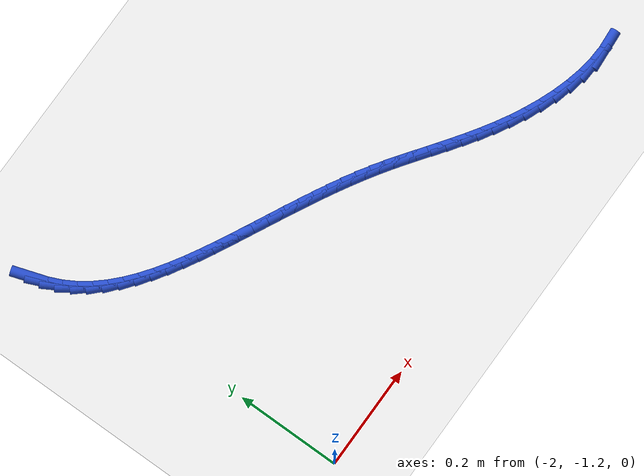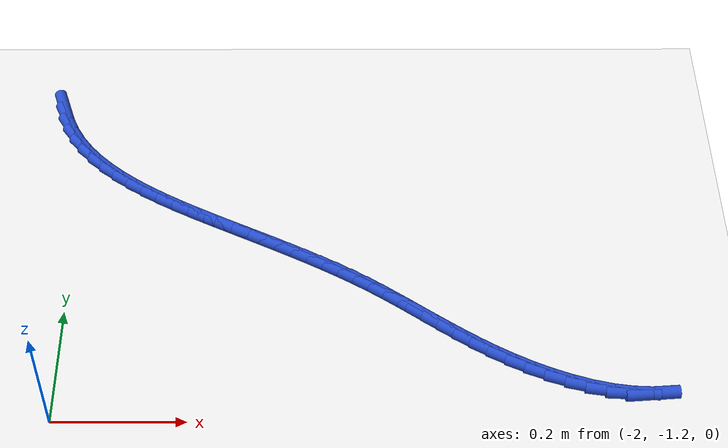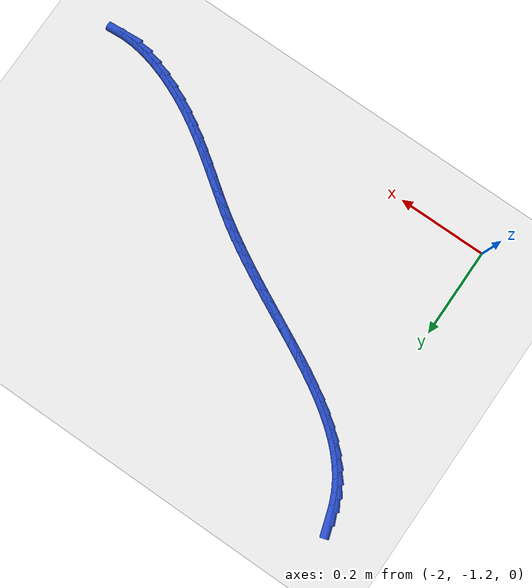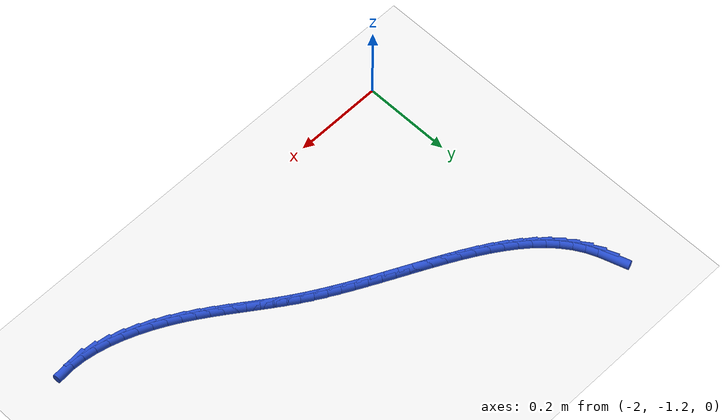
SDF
<sdf version="1.6">
 <world name="default">
  <model name="ground_plane">
   <static>1</static>
   <link name="link">
    <collision name="collision">
     <geometry><plane><normal>0 0 1</normal><size>100 100</size></plane></geometry>
     <surface><friction><ode><mu>100</mu><mu2>50</mu2></ode></friction></surface>
    </collision>
    <visual name="visual">
     <cast_shadows>0</cast_shadows>
     <geometry><plane><normal>0 0 1</normal><size>100 100</size></plane></geometry>
     <material>
      <script><uri>file://media/materials/scripts/gazebo.material</uri><name>Gazebo/WhiteGlow</name></script>
     </material>
    </visual>
   </link>
  </model>
  <model name="line">
   <link name="link_138">
    <pose>-2.0438503392382104 -0.577200579845681 0.01 0 1.57 -1.2551531570376777</pose>
    <collision name="collision">
     <geometry><cylinder><radius>0.01</radius><length>0.08</length></cylinder></geometry>
    </collision>
    <visual name="visual">
     <material>
      <script><name>Gazebo/Blue</name><uri>file://media/materials/scripts/gazebo.material</uri></script>
     </material>
     <geometry><cylinder><radius>0.01</radius><length>0.08</length></cylinder></geometry>
    </visual>
   </link>
   <link name="link_139">
    <pose>-2.0354125260697313 -0.6030389738811489 0.01 0 1.57 -1.1581857000778648</pose>
    <collision name="collision">
     <geometry><cylinder><radius>0.01</radius><length>0.08</length></cylinder></geometry>
    </collision>
    <visual name="visual">
     <material>
      <script><name>Gazebo/Blue</name><uri>file://media/materials/scripts/gazebo.material</uri></script>
     </material>
     <geometry><cylinder><radius>0.01</radius><length>0.08</length></cylinder></geometry>
    </visual>
   </link>
   <link name="link_140">
    <pose>-2.0246697064894223 -0.6275806100938957 0.01 0 1.57 -1.0468075784049262</pose>
    <collision name="collision">
     <geometry><cylinder><radius>0.01</radius><length>0.08</length></cylinder></geometry>
    </collision>
    <visual name="visual">
     <material>
      <script><name>Gazebo/Blue</name><uri>file://media/materials/scripts/gazebo.material</uri></script>
     </material>
     <geometry><cylinder><radius>0.01</radius><length>0.08</length></cylinder></geometry>
    </visual>
   </link>
   <link name="link_141">
    <pose>-2.011325606794778 -0.6506724674522788 0.01 0 1.57 -0.9408993560349974</pose>
    <collision name="collision">
     <geometry><cylinder><radius>0.01</radius><length>0.08</length></cylinder></geometry>
    </collision>
    <visual name="visual">
     <material>
      <script><name>Gazebo/Blue</name><uri>file://media/materials/scripts/gazebo.material</uri></script>
     </material>
     <geometry><cylinder><radius>0.01</radius><length>0.08</length></cylinder></geometry>
    </visual>
   </link>
   <link name="link_142">
    <pose>-1.9955133906587244 -0.6723640314585646 0.01 0 1.57 -0.8468664132107402</pose>
    <collision name="collision">
     <geometry><cylinder><radius>0.01</radius><length>0.08</length></cylinder></geometry>
    </collision>
    <visual name="visual">
     <material>
      <script><name>Gazebo/Blue</name><uri>file://media/materials/scripts/gazebo.material</uri></script>
     </material>
     <geometry><cylinder><radius>0.01</radius><length>0.08</length></cylinder></geometry>
    </visual>
   </link>
   <link name="link_143">
    <pose>-1.977482692680379 -0.692759710928436 0.01 0 1.57 -0.7651136432891275</pose>
    <collision name="collision">
     <geometry><cylinder><radius>0.01</radius><length>0.08</length></cylinder></geometry>
    </collision>
    <visual name="visual">
     <material>
      <script><name>Gazebo/Blue</name><uri>file://media/materials/scripts/gazebo.material</uri></script>
     </material>
     <geometry><cylinder><radius>0.01</radius><length>0.08</length></cylinder></geometry>
    </visual>
   </link>
   <link name="link_144">
    <pose>-1.957483149616043 -0.7119639156948216 0.01 0 1.57 -0.6952320891481583</pose>
    <collision name="collision">
     <geometry><cylinder><radius>0.01</radius><length>0.08</length></cylinder></geometry>
    </collision>
    <visual name="visual">
     <material>
      <script><name>Gazebo/Blue</name><uri>file://media/materials/scripts/gazebo.material</uri></script>
     </material>
     <geometry><cylinder><radius>0.01</radius><length>0.08</length></cylinder></geometry>
    </visual>
   </link>
   <link name="link_145">
    <pose>-1.9357643982220178 -0.7300810555906514 0.01 0 1.57 -0.6363768352578493</pose>
    <collision name="collision">
     <geometry><cylinder><radius>0.01</radius><length>0.08</length></cylinder></geometry>
    </collision>
    <visual name="visual">
     <material>
      <script><name>Gazebo/Blue</name><uri>file://media/materials/scripts/gazebo.material</uri></script>
     </material>
     <geometry><cylinder><radius>0.01</radius><length>0.08</length></cylinder></geometry>
    </visual>
   </link>
   <link name="link_146">
    <pose>-1.9125760752546053 -0.7472155404488542 0.01 0 1.57 -0.5875505717042402</pose>
    <collision name="collision">
     <geometry><cylinder><radius>0.01</radius><length>0.08</length></cylinder></geometry>
    </collision>
    <visual name="visual">
     <material>
      <script><name>Gazebo/Blue</name><uri>file://media/materials/scripts/gazebo.material</uri></script>
     </material>
     <geometry><cylinder><radius>0.01</radius><length>0.08</length></cylinder></geometry>
    </visual>
   </link>
   <link name="link_147">
    <pose>-1.8881678174701046 -0.7634717801023599 0.01 0 1.57 -0.5477826643687367</pose>
    <collision name="collision">
     <geometry><cylinder><radius>0.01</radius><length>0.08</length></cylinder></geometry>
    </collision>
    <visual name="visual">
     <material>
      <script><name>Gazebo/Blue</name><uri>file://media/materials/scripts/gazebo.material</uri></script>
     </material>
     <geometry><cylinder><radius>0.01</radius><length>0.08</length></cylinder></geometry>
    </visual>
   </link>
   <link name="link_148">
    <pose>-1.8627892616248187 -0.7789541843840966 0.01 0 1.57 -0.5162280493665866</pose>
    <collision name="collision">
     <geometry><cylinder><radius>0.01</radius><length>0.08</length></cylinder></geometry>
    </collision>
    <visual name="visual">
     <material>
      <script><name>Gazebo/Blue</name><uri>file://media/materials/scripts/gazebo.material</uri></script>
     </material>
     <geometry><cylinder><radius>0.01</radius><length>0.08</length></cylinder></geometry>
    </visual>
   </link>
   <link name="link_149">
    <pose>-1.836690044475049 -0.7937671631269942 0.01 0 1.57 -0.4922157178597105</pose>
    <collision name="collision">
     <geometry><cylinder><radius>0.01</radius><length>0.08</length></cylinder></geometry>
    </collision>
    <visual name="visual">
     <material>
      <script><name>Gazebo/Blue</name><uri>file://media/materials/scripts/gazebo.material</uri></script>
     </material>
     <geometry><cylinder><radius>0.01</radius><length>0.08</length></cylinder></geometry>
    </visual>
   </link>
   <link name="link_150">
    <pose>-1.8101198027770957 -0.8080151261639822 0.01 0 1.57 -0.4752706224035889</pose>
    <collision name="collision">
     <geometry><cylinder><radius>0.01</radius><length>0.08</length></cylinder></geometry>
    </collision>
    <visual name="visual">
     <material>
      <script><name>Gazebo/Blue</name><uri>file://media/materials/scripts/gazebo.material</uri></script>
     </material>
     <geometry><cylinder><radius>0.01</radius><length>0.08</length></cylinder></geometry>
    </visual>
   </link>
   <link name="link_151">
    <pose>-1.7833281732872601 -0.8218024833279893 0.01 0 1.57 -0.4651252780692186</pose>
    <collision name="collision">
     <geometry><cylinder><radius>0.01</radius><length>0.08</length></cylinder></geometry>
    </collision>
    <visual name="visual">
     <material>
      <script><name>Gazebo/Blue</name><uri>file://media/materials/scripts/gazebo.material</uri></script>
     </material>
     <geometry><cylinder><radius>0.01</radius><length>0.08</length></cylinder></geometry>
    </visual>
   </link>
   <link name="link_152">
    <pose>-1.7565647927618446 -0.8352336444519451 0.01 0 1.57 -0.4614927272386181</pose>
    <collision name="collision">
     <geometry><cylinder><radius>0.01</radius><length>0.08</length></cylinder></geometry>
    </collision>
    <visual name="visual">
     <material>
      <script><name>Gazebo/Blue</name><uri>file://media/materials/scripts/gazebo.material</uri></script>
     </material>
     <geometry><cylinder><radius>0.01</radius><length>0.08</length></cylinder></geometry>
    </visual>
   </link>
   <link name="link_153">
    <pose>-1.7300645819422558 -0.8484124455513145 0.01 0 1.57 -0.4621901252936759</pose>
    <collision name="collision">
     <geometry><cylinder><radius>0.01</radius><length>0.08</length></cylinder></geometry>
    </collision>
    <visual name="visual">
     <material>
      <script><name>Gazebo/Blue</name><uri>file://media/materials/scripts/gazebo.material</uri></script>
     </material>
     <geometry><cylinder><radius>0.01</radius><length>0.08</length></cylinder></geometry>
    </visual>
   </link>
   <link name="link_154">
    <pose>-1.7039199476324058 -0.8614371656353449 0.01 0 1.57 -0.46604948185441114</pose>
    <collision name="collision">
     <geometry><cylinder><radius>0.01</radius><length>0.08</length></cylinder></geometry>
    </collision>
    <visual name="visual">
     <material>
      <script><name>Gazebo/Blue</name><uri>file://media/materials/scripts/gazebo.material</uri></script>
     </material>
     <geometry><cylinder><radius>0.01</radius><length>0.08</length></cylinder></geometry>
    </visual>
   </link>
   <link name="link_155">
    <pose>-1.6781433157090582 -0.8744029650393002 0.01 0 1.57 -0.4731607394148554</pose>
    <collision name="collision">
     <geometry><cylinder><radius>0.01</radius><length>0.08</length></cylinder></geometry>
    </collision>
    <visual name="visual">
     <material>
      <script><name>Gazebo/Blue</name><uri>file://media/materials/scripts/gazebo.material</uri></script>
     </material>
     <geometry><cylinder><radius>0.01</radius><length>0.08</length></cylinder></geometry>
    </visual>
   </link>
   <link name="link_156">
    <pose>-1.652746226379435 -0.8874049695637767 0.01 0 1.57 -0.483609442141231</pose>
    <collision name="collision">
     <geometry><cylinder><radius>0.01</radius><length>0.08</length></cylinder></geometry>
    </collision>
    <visual name="visual">
     <material>
      <script><name>Gazebo/Blue</name><uri>file://media/materials/scripts/gazebo.material</uri></script>
     </material>
     <geometry><cylinder><radius>0.01</radius><length>0.08</length></cylinder></geometry>
    </visual>
   </link>
   <link name="link_157">
    <pose>-1.627740219850756 -0.9005383050093716 0.01 0 1.57 -0.4974579129476787</pose>
    <collision name="collision">
     <geometry><cylinder><radius>0.01</radius><length>0.08</length></cylinder></geometry>
    </collision>
    <visual name="visual">
     <material>
      <script><name>Gazebo/Blue</name><uri>file://media/materials/scripts/gazebo.material</uri></script>
     </material>
     <geometry><cylinder><radius>0.01</radius><length>0.08</length></cylinder></geometry>
    </visual>
   </link>
   <link name="link_158">
    <pose>-1.6031368363302427 -0.9138980971766825 0.01 0 1.57 -0.5147397236046748</pose>
    <collision name="collision">
     <geometry><cylinder><radius>0.01</radius><length>0.08</length></cylinder></geometry>
    </collision>
    <visual name="visual">
     <material>
      <script><name>Gazebo/Blue</name><uri>file://media/materials/scripts/gazebo.material</uri></script>
     </material>
     <geometry><cylinder><radius>0.01</radius><length>0.08</length></cylinder></geometry>
    </visual>
   </link>
   <link name="link_159">
    <pose>-1.578947616025116 -0.9275794718663065 0.01 0 1.57 -0.5354532045644713</pose>
    <collision name="collision">
     <geometry><cylinder><radius>0.01</radius><length>0.08</length></cylinder></geometry>
    </collision>
    <visual name="visual">
     <material>
      <script><name>Gazebo/Blue</name><uri>file://media/materials/scripts/gazebo.material</uri></script>
     </material>
     <geometry><cylinder><radius>0.01</radius><length>0.08</length></cylinder></geometry>
    </visual>
   </link>
   <link name="link_160">
    <pose>-1.555184099142597 -0.941677554878841 0.01 0 1.57 -0.5595542986583594</pose>
    <collision name="collision">
     <geometry><cylinder><radius>0.01</radius><length>0.08</length></cylinder></geometry>
    </collision>
    <visual name="visual">
     <material>
      <script><name>Gazebo/Blue</name><uri>file://media/materials/scripts/gazebo.material</uri></script>
     </material>
     <geometry><cylinder><radius>0.01</radius><length>0.08</length></cylinder></geometry>
    </visual>
   </link>
   <link name="link_161">
    <pose>-1.5318578258899063 -0.9562874720148828 0.01 0 1.57 -0.5861167579825171</pose>
    <collision name="collision">
     <geometry><cylinder><radius>0.01</radius><length>0.08</length></cylinder></geometry>
    </collision>
    <visual name="visual">
     <material>
      <script><name>Gazebo/Blue</name><uri>file://media/materials/scripts/gazebo.material</uri></script>
     </material>
     <geometry><cylinder><radius>0.01</radius><length>0.08</length></cylinder></geometry>
    </visual>
   </link>
   <link name="link_162">
    <pose>-1.5089666436361056 -0.9714859828462254 0.01 0 1.57 -0.607703442817102</pose>
    <collision name="collision">
     <geometry><cylinder><radius>0.01</radius><length>0.08</length></cylinder></geometry>
    </collision>
    <visual name="visual">
     <material>
      <script><name>Gazebo/Blue</name><uri>file://media/materials/scripts/gazebo.material</uri></script>
     </material>
     <geometry><cylinder><radius>0.01</radius><length>0.08</length></cylinder></geometry>
    </visual>
   </link>
   <link name="link_163">
    <pose>-1.4863885935842684 -0.9871891507156394 0.01 0 1.57 -0.6204237618098457</pose>
    <collision name="collision">
     <geometry><cylinder><radius>0.01</radius><length>0.08</length></cylinder></geometry>
    </collision>
    <visual name="visual">
     <material>
      <script><name>Gazebo/Blue</name><uri>file://media/materials/scripts/gazebo.material</uri></script>
     </material>
     <geometry><cylinder><radius>0.01</radius><length>0.08</length></cylinder></geometry>
    </visual>
   </link>
   <link name="link_164">
    <pose>-1.4639397623956694 -1.003229939225951 0.01 0 1.57 -0.6242501820920108</pose>
    <collision name="collision">
     <geometry><cylinder><radius>0.01</radius><length>0.08</length></cylinder></geometry>
    </collision>
    <visual name="visual">
     <material>
      <script><name>Gazebo/Blue</name><uri>file://media/materials/scripts/gazebo.material</uri></script>
     </material>
     <geometry><cylinder><radius>0.01</radius><length>0.08</length></cylinder></geometry>
    </visual>
   </link>
   <link name="link_165">
    <pose>-1.4414357166854623 -1.0194406144411752 0.01 0 1.57 -0.6192977561383487</pose>
    <collision name="collision">
     <geometry><cylinder><radius>0.01</radius><length>0.08</length></cylinder></geometry>
    </collision>
    <visual name="visual">
     <material>
      <script><name>Gazebo/Blue</name><uri>file://media/materials/scripts/gazebo.material</uri></script>
     </material>
     <geometry><cylinder><radius>0.01</radius><length>0.08</length></cylinder></geometry>
    </visual>
   </link>
   <link name="link_166">
    <pose>-1.4186920230688012 -1.0356534424253272 0.01 0 1.57 -0.6057785796195857</pose>
    <collision name="collision">
     <geometry><cylinder><radius>0.01</radius><length>0.08</length></cylinder></geometry>
    </collision>
    <visual name="visual">
     <material>
      <script><name>Gazebo/Blue</name><uri>file://media/materials/scripts/gazebo.material</uri></script>
     </material>
     <geometry><cylinder><radius>0.01</radius><length>0.08</length></cylinder></geometry>
    </visual>
   </link>
   <link name="link_167">
    <pose>-1.3955242481608388 -1.0517006892424205 0.01 0 1.57 -0.5840049887041604</pose>
    <collision name="collision">
     <geometry><cylinder><radius>0.01</radius><length>0.08</length></cylinder></geometry>
    </collision>
    <visual name="visual">
     <material>
      <script><name>Gazebo/Blue</name><uri>file://media/materials/scripts/gazebo.material</uri></script>
     </material>
     <geometry><cylinder><radius>0.01</radius><length>0.08</length></cylinder></geometry>
    </visual>
   </link>
   <link name="link_168">
    <pose>-1.3717479585767303 -1.0674146209564719 0.01 0 1.57 -0.5544061996767065</pose>
    <collision name="collision">
     <geometry><cylinder><radius>0.01</radius><length>0.08</length></cylinder></geometry>
    </collision>
    <visual name="visual">
     <material>
      <script><name>Gazebo/Blue</name><uri>file://media/materials/scripts/gazebo.material</uri></script>
     </material>
     <geometry><cylinder><radius>0.01</radius><length>0.08</length></cylinder></geometry>
    </visual>
   </link>
   <link name="link_169">
    <pose>-1.3471787209316286 -1.0826275036314943 0.01 0 1.57 -0.5175521320174363</pose>
    <collision name="collision">
     <geometry><cylinder><radius>0.01</radius><length>0.08</length></cylinder></geometry>
    </collision>
    <visual name="visual">
     <material>
      <script><name>Gazebo/Blue</name><uri>file://media/materials/scripts/gazebo.material</uri></script>
     </material>
     <geometry><cylinder><radius>0.01</radius><length>0.08</length></cylinder></geometry>
    </visual>
   </link>
   <link name="link_170">
    <pose>-1.3216321018406871 -1.0971716033315038 0.01 0 1.57 -0.474176290298103</pose>
    <collision name="collision">
     <geometry><cylinder><radius>0.01</radius><length>0.08</length></cylinder></geometry>
    </collision>
    <visual name="visual">
     <material>
      <script><name>Gazebo/Blue</name><uri>file://media/materials/scripts/gazebo.material</uri></script>
     </material>
     <geometry><cylinder><radius>0.01</radius><length>0.08</length></cylinder></geometry>
    </visual>
   </link>
   <link name="link_171">
    <pose>-1.2949238097066056 -1.1108791266242353 0.01 0 1.57 -0.4253123871432271</pose>
    <collision name="collision">
     <geometry><cylinder><radius>0.01</radius><length>0.08</length></cylinder></geometry>
    </collision>
    <visual name="visual">
     <material>
      <script><name>Gazebo/Blue</name><uri>file://media/materials/scripts/gazebo.material</uri></script>
     </material>
     <geometry><cylinder><radius>0.01</radius><length>0.08</length></cylinder></geometry>
    </visual>
   </link>
   <link name="link_172">
    <pose>-1.2669982391922514 -1.1235282813026186 0.01 0 1.57 -0.3709754363033083</pose>
    <collision name="collision">
     <geometry><cylinder><radius>0.01</radius><length>0.08</length></cylinder></geometry>
    </collision>
    <visual name="visual">
     <material>
      <script><name>Gazebo/Blue</name><uri>file://media/materials/scripts/gazebo.material</uri></script>
     </material>
     <geometry><cylinder><radius>0.01</radius><length>0.08</length></cylinder></geometry>
    </visual>
   </link>
   <link name="link_173">
    <pose>-1.2381657924507923 -1.1347436926712942 0.01 0 1.57 -0.3091653391453171</pose>
    <collision name="collision">
     <geometry><cylinder><radius>0.01</radius><length>0.08</length></cylinder></geometry>
    </collision>
    <visual name="visual">
     <material>
      <script><name>Gazebo/Blue</name><uri>file://media/materials/scripts/gazebo.material</uri></script>
     </material>
     <geometry><cylinder><radius>0.01</radius><length>0.08</length></cylinder></geometry>
    </visual>
   </link>
   <link name="link_174">
    <pose>-1.208801506397195 -1.1441228642742556 0.01 0 1.57 -0.2373178144689265</pose>
    <collision name="collision">
     <geometry><cylinder><radius>0.01</radius><length>0.08</length></cylinder></geometry>
    </collision>
    <visual name="visual">
     <material>
      <script><name>Gazebo/Blue</name><uri>file://media/materials/scripts/gazebo.material</uri></script>
     </material>
     <geometry><cylinder><radius>0.01</radius><length>0.08</length></cylinder></geometry>
    </visual>
   </link>
   <link name="link_175">
    <pose>-1.179280417946425 -1.1512632996554948 0.01 0 1.57 -0.15235165681894622</pose>
    <collision name="collision">
     <geometry><cylinder><radius>0.01</radius><length>0.08</length></cylinder></geometry>
    </collision>
    <visual name="visual">
     <material>
      <script><name>Gazebo/Blue</name><uri>file://media/materials/scripts/gazebo.material</uri></script>
     </material>
     <geometry><cylinder><radius>0.01</radius><length>0.08</length></cylinder></geometry>
    </visual>
   </link>
   <link name="link_176">
    <pose>-1.149977564013449 -1.1557625023590048 0.01 0 1.57 -0.05065307274638568</pose>
    <collision name="collision">
     <geometry><cylinder><radius>0.01</radius><length>0.08</length></cylinder></geometry>
    </collision>
    <visual name="visual">
     <material>
      <script><name>Gazebo/Blue</name><uri>file://media/materials/scripts/gazebo.material</uri></script>
     </material>
     <geometry><cylinder><radius>0.01</radius><length>0.08</length></cylinder></geometry>
    </visual>
   </link>
   <link name="link_177">
    <pose>-1.1212679815132318 -1.1572179759287786 0.01 0 1.57 0.07163857268081203</pose>
    <collision name="collision">
     <geometry><cylinder><radius>0.01</radius><length>0.08</length></cylinder></geometry>
    </collision>
    <visual name="visual">
     <material>
      <script><name>Gazebo/Blue</name><uri>file://media/materials/scripts/gazebo.material</uri></script>
     </material>
     <geometry><cylinder><radius>0.01</radius><length>0.08</length></cylinder></geometry>
    </visual>
   </link>
  </model>
 </world>
</sdf>
